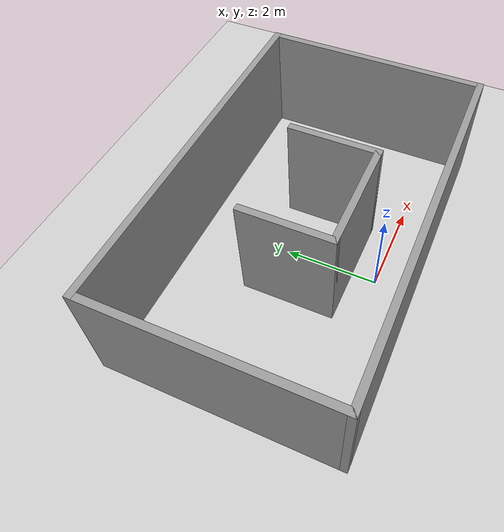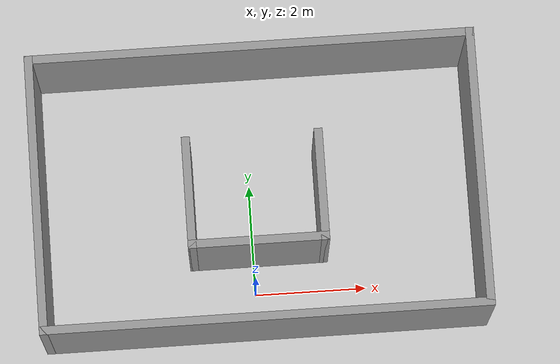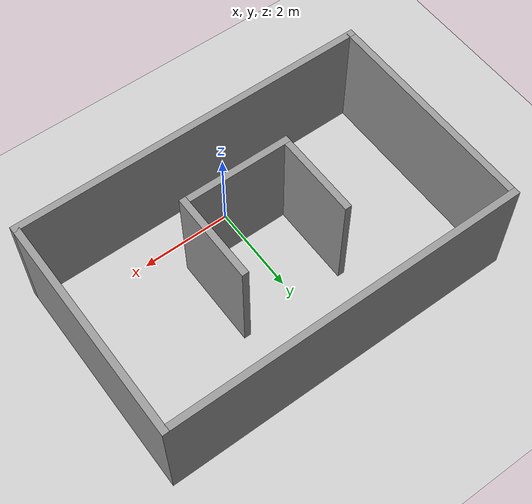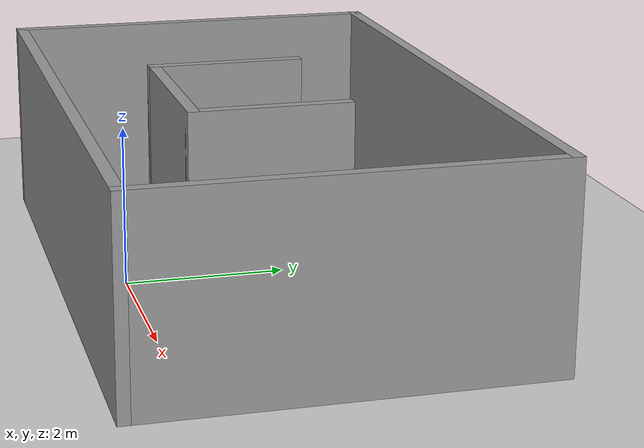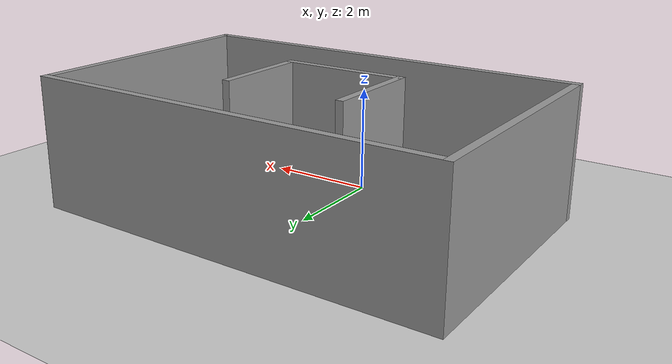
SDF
<sdf version="1.7">
 <world name="default">
  <light name="sun" type="directional">
   <pose>0 0 10 0 -0 0</pose>
   <diffuse>0.8 0.8 0.8 1</diffuse>
   <specular>0.2 0.2 0.2 1</specular>
   <attenuation>
    <range>1000</range>
    <constant>0.9</constant>
    <linear>0.01</linear>
    <quadratic>0.001</quadratic>
   </attenuation>
   <direction>-0.5 0.1 -0.9</direction>
   <spot><inner_angle>0</inner_angle><outer_angle>0</outer_angle><falloff>0</falloff></spot>
  </light>
  <model name="ground_plane">
   <static>1</static>
   <link name="link">
    <collision name="collision">
     <geometry><plane><normal>0 0 1</normal><size>100 100</size></plane></geometry>
     <surface><friction><ode><mu>100</mu><mu2>50</mu2></ode></friction></surface>
    </collision>
    <visual name="visual">
     <cast_shadows>0</cast_shadows>
     <geometry><plane><normal>0 0 1</normal><size>100 100</size></plane></geometry>
     <material>
      <script><uri>file://media/materials/scripts/gazebo.material</uri><name>Gazebo/Grey</name></script>
     </material>
    </visual>
   </link>
  </model>
  <gravity>0 0 -9.8</gravity>
  <magnetic_field>6e-06 2.3e-05 -4.2e-05</magnetic_field>
  <atmosphere type="adiabatic"/>
  <physics type="ode">
   <max_step_size>0.001</max_step_size>
   <real_time_factor>1</real_time_factor>
   <real_time_update_rate>1000</real_time_update_rate>
  </physics>
  <scene><ambient>0.4 0.4 0.4 1</ambient><background>0.7 0.7 0.7 1</background><shadows>1</shadows></scene>
  <audio><device>default</device></audio>
  <spherical_coordinates>
   <surface_model>EARTH_WGS84</surface_model>
   <latitude_deg>0</latitude_deg>
   <longitude_deg>0</longitude_deg>
   <elevation>0</elevation>
   <heading_deg>0</heading_deg>
  </spherical_coordinates>
  <model name="U_shaped_obstacle_0">
   <pose>0.151305 4.00454 0 0 -0 0</pose>
   <link name="Wall_10">
    <collision name="Wall_10_Collision">
     <geometry><box><size>8 0.15 2.5</size></box></geometry>
     <pose>0 0 1.25 0 -0 0</pose>
    </collision>
    <visual name="Wall_10_Visual">
     <pose>0 0 1.25 0 -0 0</pose>
     <geometry><box><size>8 0.15 2.5</size></box></geometry>
     <material>
      <script><uri>file://media/materials/scripts/gazebo.material</uri><name>Gazebo/Grey</name></script>
      <ambient>1 1 1 1</ambient>
     </material>
     <meta><layer>0</layer></meta>
    </visual>
    <pose>0 -4.75898 0 0 -0 3.14159</pose>
   </link>
   <link name="Wall_11">
    <collision name="Wall_11_Collision">
     <geometry><box><size>5 0.15 2.5</size></box></geometry>
     <pose>0 0 1.25 0 -0 0</pose>
    </collision>
    <visual name="Wall_11_Visual">
     <pose>0 0 1.25 0 -0 0</pose>
     <geometry><box><size>5 0.15 2.5</size></box></geometry>
     <material>
      <script><uri>file://media/materials/scripts/gazebo.material</uri><name>Gazebo/Grey</name></script>
      <ambient>1 1 1 1</ambient>
     </material>
     <meta><layer>0</layer></meta>
    </visual>
    <pose>-3.925 -2.33398 0 0 -0 1.5708</pose>
   </link>
   <link name="Wall_4">
    <collision name="Wall_4_Collision">
     <geometry><box><size>2 0.15 2.5</size></box></geometry>
     <pose>0 0 1.25 0 -0 0</pose>
    </collision>
    <visual name="Wall_4_Visual">
     <pose>0 0 1.25 0 -0 0</pose>
     <geometry><box><size>2 0.15 2.5</size></box></geometry>
     <material>
      <script><uri>file://media/materials/scripts/gazebo.material</uri><name>Gazebo/Grey</name></script>
      <ambient>1 1 1 1</ambient>
     </material>
     <meta><layer>0</layer></meta>
    </visual>
    <pose>-1.234 -2.47848 0 0 -0 -1.5708</pose>
   </link>
   <link name="Wall_5">
    <collision name="Wall_5_Collision">
     <geometry><box><size>2.5 0.15 2.5</size></box></geometry>
     <pose>0 0 1.25 0 -0 0</pose>
    </collision>
    <visual name="Wall_5_Visual">
     <pose>0 0 1.25 0 -0 0</pose>
     <geometry><box><size>2.5 0.15 2.5</size></box></geometry>
     <material>
      <script><uri>file://media/materials/scripts/gazebo.material</uri><name>Gazebo/Grey</name></script>
      <ambient>1 1 1 1</ambient>
     </material>
     <meta><layer>0</layer></meta>
    </visual>
    <pose>-0.059 -3.40348 0 0 -0 0</pose>
   </link>
   <link name="Wall_6">
    <collision name="Wall_6_Collision">
     <geometry><box><size>2 0.15 2.5</size></box></geometry>
     <pose>0 0 1.25 0 -0 0</pose>
    </collision>
    <visual name="Wall_6_Visual">
     <pose>0 0 1.25 0 -0 0</pose>
     <geometry><box><size>2 0.15 2.5</size></box></geometry>
     <material>
      <script><uri>file://media/materials/scripts/gazebo.material</uri><name>Gazebo/Grey</name></script>
      <ambient>1 1 1 1</ambient>
     </material>
     <meta><layer>0</layer></meta>
    </visual>
    <pose>1.116 -2.47848 0 0 -0 1.5708</pose>
   </link>
   <link name="Wall_8">
    <collision name="Wall_8_Collision">
     <geometry><box><size>8 0.15 2.5</size></box></geometry>
     <pose>0 0 1.25 0 -0 0</pose>
    </collision>
    <visual name="Wall_8_Visual">
     <pose>0 0 1.25 0 -0 0</pose>
     <geometry><box><size>8 0.15 2.5</size></box></geometry>
     <material>
      <script><uri>file://media/materials/scripts/gazebo.material</uri><name>Gazebo/Grey</name></script>
      <ambient>1 1 1 1</ambient>
     </material>
     <meta><layer>0</layer></meta>
    </visual>
    <pose>0 0.091022 0 0 -0 0</pose>
   </link>
   <link name="Wall_9">
    <collision name="Wall_9_Collision">
     <geometry><box><size>5 0.15 2.5</size></box></geometry>
     <pose>0 0 1.25 0 -0 0</pose>
    </collision>
    <visual name="Wall_9_Visual">
     <pose>0 0 1.25 0 -0 0</pose>
     <geometry><box><size>5 0.15 2.5</size></box></geometry>
     <material>
      <script><uri>file://media/materials/scripts/gazebo.material</uri><name>Gazebo/Grey</name></script>
      <ambient>1 1 1 1</ambient>
     </material>
     <meta><layer>0</layer></meta>
    </visual>
    <pose>3.925 -2.33398 0 0 -0 -1.5708</pose>
   </link>
   <static>1</static>
  </model>
 </world>
</sdf>
